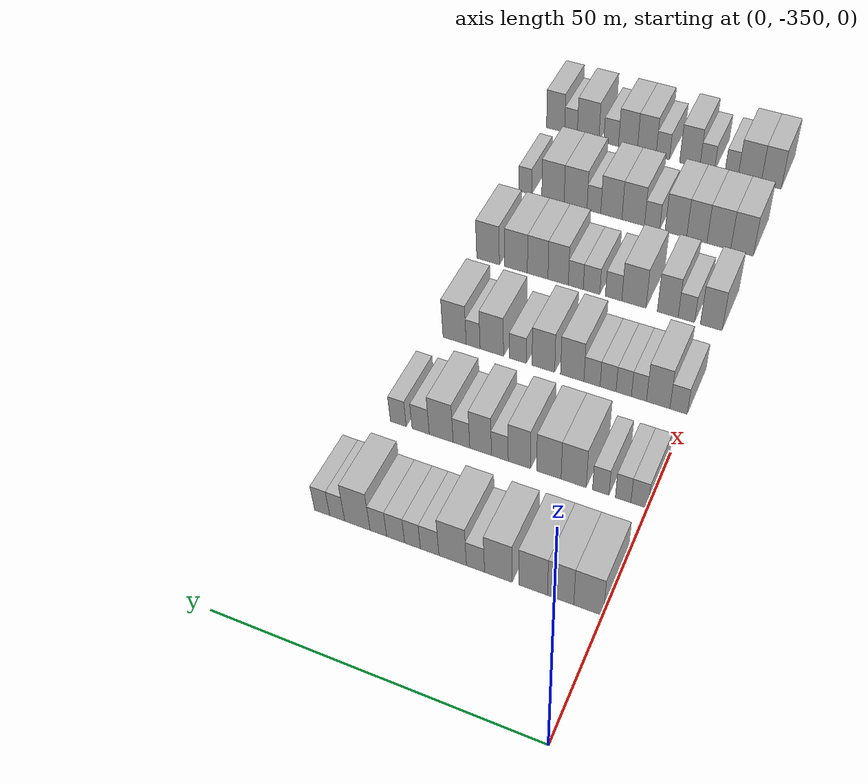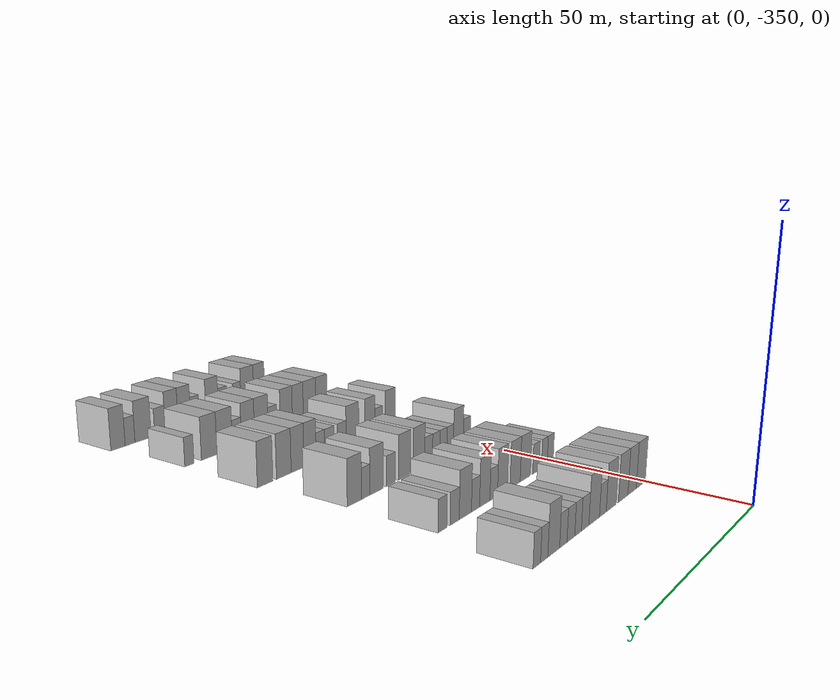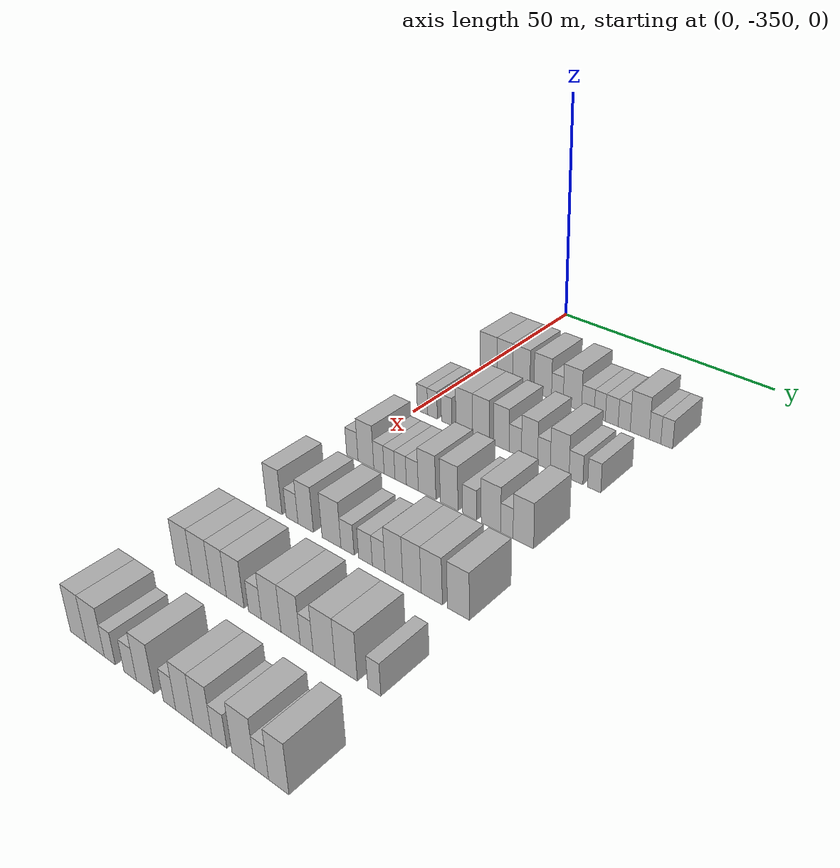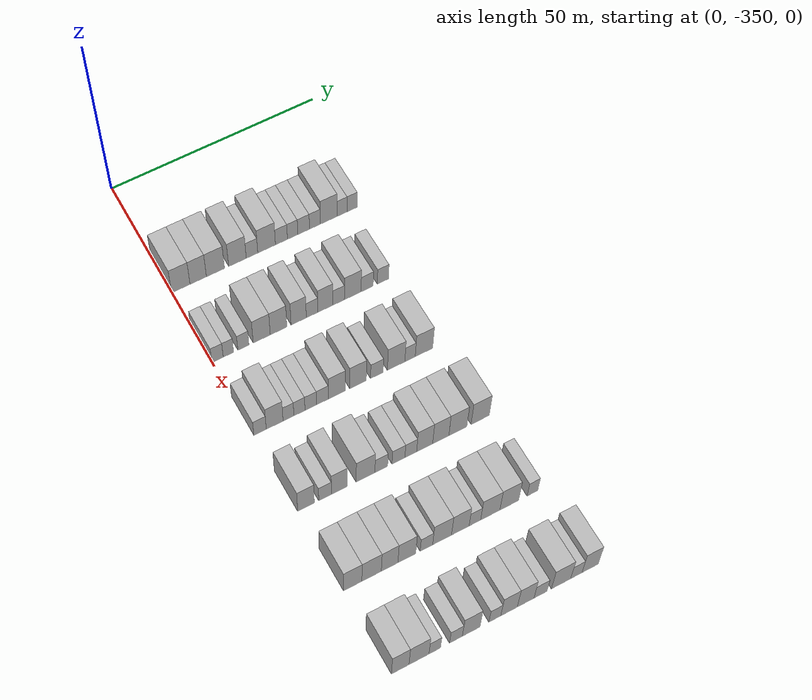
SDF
<sdf version="1.6">
 <world name="default">
  <model name="building_1">
   <static>1</static>
   <pose>25.0000 -347.8321 0 0.000000 0.000000 0.000000</pose>
   <link name="link">
    <pose>0 0 4.50 0 0 0</pose>
    <collision name="collision"><geometry><box><size>10.0000 4.3358 9.0000</size></box></geometry></collision>
    <visual name="visual">
     <cast_shadows>0</cast_shadows>
     <geometry><box><size>10.0000 4.3358 9.0000</size></box></geometry>
     <material>
      <script>
       <uri>model://HANNAS_wall/materials/scripts</uri>
       <uri>model://HANNAS_wall/materials/textures</uri>
       <name>vrc/HANNAS_wall</name>
      </script>
     </material>
    </visual>
   </link>
  </model>
  <model name="building_2">
   <static>1</static>
   <pose>25.0000 -343.7193 0 0.000000 0.000000 0.000000</pose>
   <link name="link">
    <pose>0 0 4.50 0 0 0</pose>
    <collision name="collision"><geometry><box><size>10.0000 3.8897 9.0000</size></box></geometry></collision>
    <visual name="visual">
     <cast_shadows>0</cast_shadows>
     <geometry><box><size>10.0000 3.8897 9.0000</size></box></geometry>
     <material>
      <script>
       <uri>model://HANNAS_wall/materials/scripts</uri>
       <uri>model://HANNAS_wall/materials/textures</uri>
       <name>vrc/HANNAS_wall</name>
      </script>
     </material>
    </visual>
   </link>
  </model>
  <model name="building_3">
   <static>1</static>
   <pose>25.0000 -339.6168 0 0.000000 0.000000 0.000000</pose>
   <link name="link">
    <pose>0 0 4.50 0 0 0</pose>
    <collision name="collision"><geometry><box><size>10.0000 4.3153 9.0000</size></box></geometry></collision>
    <visual name="visual">
     <cast_shadows>0</cast_shadows>
     <geometry><box><size>10.0000 4.3153 9.0000</size></box></geometry>
     <material>
      <script>
       <uri>model://HANNAS_wall/materials/scripts</uri>
       <uri>model://HANNAS_wall/materials/textures</uri>
       <name>vrc/HANNAS_wall</name>
      </script>
     </material>
    </visual>
   </link>
  </model>
  <model name="building_4">
   <static>1</static>
   <pose>25.0000 -334.3568 0 0.000000 0.000000 0.000000</pose>
   <link name="link">
    <pose>0 0 4.50 0 0 0</pose>
    <collision name="collision"><geometry><box><size>10.0000 4.2047 9.0000</size></box></geometry></collision>
    <visual name="visual">
     <cast_shadows>0</cast_shadows>
     <geometry><box><size>10.0000 4.2047 9.0000</size></box></geometry>
     <material>
      <script>
       <uri>model://HANNAS_wall/materials/scripts</uri>
       <uri>model://HANNAS_wall/materials/textures</uri>
       <name>vrc/HANNAS_wall</name>
      </script>
     </material>
    </visual>
   </link>
  </model>
  <model name="building_5">
   <static>1</static>
   <pose>25.0000 -330.8617 0 0.000000 0.000000 0.000000</pose>
   <link name="link">
    <pose>0 0 3.00 0 0 0</pose>
    <collision name="collision"><geometry><box><size>10.0000 2.7855 6.0000</size></box></geometry></collision>
    <visual name="visual">
     <cast_shadows>0</cast_shadows>
     <geometry><box><size>10.0000 2.7855 6.0000</size></box></geometry>
     <material>
      <script>
       <uri>model://HANNAS_wall/materials/scripts</uri>
       <uri>model://HANNAS_wall/materials/textures</uri>
       <name>vrc/HANNAS_wall</name>
      </script>
     </material>
    </visual>
   </link>
  </model>
  <model name="building_6">
   <static>1</static>
   <pose>25.0000 -327.3317 0 0.000000 0.000000 0.000000</pose>
   <link name="link">
    <pose>0 0 4.50 0 0 0</pose>
    <collision name="collision"><geometry><box><size>10.0000 4.2745 9.0000</size></box></geometry></collision>
    <visual name="visual">
     <cast_shadows>0</cast_shadows>
     <geometry><box><size>10.0000 4.2745 9.0000</size></box></geometry>
     <material>
      <script>
       <uri>model://HANNAS_wall/materials/scripts</uri>
       <uri>model://HANNAS_wall/materials/textures</uri>
       <name>vrc/HANNAS_wall</name>
      </script>
     </material>
    </visual>
   </link>
  </model>
  <model name="building_7">
   <static>1</static>
   <pose>25.0000 -323.7364 0 0.000000 0.000000 0.000000</pose>
   <link name="link">
    <pose>0 0 3.00 0 0 0</pose>
    <collision name="collision"><geometry><box><size>10.0000 2.9162 6.0000</size></box></geometry></collision>
    <visual name="visual">
     <cast_shadows>0</cast_shadows>
     <geometry><box><size>10.0000 2.9162 6.0000</size></box></geometry>
     <material>
      <script>
       <uri>model://HANNAS_wall/materials/scripts</uri>
       <uri>model://HANNAS_wall/materials/textures</uri>
       <name>vrc/HANNAS_wall</name>
      </script>
     </material>
    </visual>
   </link>
  </model>
  <model name="building_8">
   <static>1</static>
   <pose>25.0000 -321.0220 0 0.000000 0.000000 0.000000</pose>
   <link name="link">
    <pose>0 0 3.00 0 0 0</pose>
    <collision name="collision"><geometry><box><size>10.0000 2.5125 6.0000</size></box></geometry></collision>
    <visual name="visual">
     <cast_shadows>0</cast_shadows>
     <geometry><box><size>10.0000 2.5125 6.0000</size></box></geometry>
     <material>
      <script>
       <uri>model://HANNAS_wall/materials/scripts</uri>
       <uri>model://HANNAS_wall/materials/textures</uri>
       <name>vrc/HANNAS_wall</name>
      </script>
     </material>
    </visual>
   </link>
  </model>
  <model name="building_9">
   <static>1</static>
   <pose>25.0000 -318.3327 0 0.000000 0.000000 0.000000</pose>
   <link name="link">
    <pose>0 0 3.00 0 0 0</pose>
    <collision name="collision"><geometry><box><size>10.0000 2.8662 6.0000</size></box></geometry></collision>
    <visual name="visual">
     <cast_shadows>0</cast_shadows>
     <geometry><box><size>10.0000 2.8662 6.0000</size></box></geometry>
     <material>
      <script>
       <uri>model://HANNAS_wall/materials/scripts</uri>
       <uri>model://HANNAS_wall/materials/textures</uri>
       <name>vrc/HANNAS_wall</name>
      </script>
     </material>
    </visual>
   </link>
  </model>
  <model name="building_10">
   <static>1</static>
   <pose>25.0000 -315.5656 0 0.000000 0.000000 0.000000</pose>
   <link name="link">
    <pose>0 0 3.00 0 0 0</pose>
    <collision name="collision"><geometry><box><size>10.0000 2.6680 6.0000</size></box></geometry></collision>
    <visual name="visual">
     <cast_shadows>0</cast_shadows>
     <geometry><box><size>10.0000 2.6680 6.0000</size></box></geometry>
     <material>
      <script>
       <uri>model://HANNAS_wall/materials/scripts</uri>
       <uri>model://HANNAS_wall/materials/textures</uri>
       <name>vrc/HANNAS_wall</name>
      </script>
     </material>
    </visual>
   </link>
  </model>
  <model name="building_11">
   <static>1</static>
   <pose>25.0000 -312.1745 0 0.000000 0.000000 0.000000</pose>
   <link name="link">
    <pose>0 0 4.50 0 0 0</pose>
    <collision name="collision"><geometry><box><size>10.0000 4.1141 9.0000</size></box></geometry></collision>
    <visual name="visual">
     <cast_shadows>0</cast_shadows>
     <geometry><box><size>10.0000 4.1141 9.0000</size></box></geometry>
     <material>
      <script>
       <uri>model://HANNAS_wall/materials/scripts</uri>
       <uri>model://HANNAS_wall/materials/textures</uri>
       <name>vrc/HANNAS_wall</name>
      </script>
     </material>
    </visual>
   </link>
  </model>
  <model name="building_12">
   <static>1</static>
   <pose>25.0000 -308.8851 0 0.000000 0.000000 0.000000</pose>
   <link name="link">
    <pose>0 0 3.00 0 0 0</pose>
    <collision name="collision"><geometry><box><size>10.0000 2.4647 6.0000</size></box></geometry></collision>
    <visual name="visual">
     <cast_shadows>0</cast_shadows>
     <geometry><box><size>10.0000 2.4647 6.0000</size></box></geometry>
     <material>
      <script>
       <uri>model://HANNAS_wall/materials/scripts</uri>
       <uri>model://HANNAS_wall/materials/textures</uri>
       <name>vrc/HANNAS_wall</name>
      </script>
     </material>
    </visual>
   </link>
  </model>
  <model name="building_13">
   <static>1</static>
   <pose>25.0000 -306.4076 0 0.000000 0.000000 0.000000</pose>
   <link name="link">
    <pose>0 0 3.00 0 0 0</pose>
    <collision name="collision"><geometry><box><size>10.0000 2.4903 6.0000</size></box></geometry></collision>
    <visual name="visual">
     <cast_shadows>0</cast_shadows>
     <geometry><box><size>10.0000 2.4903 6.0000</size></box></geometry>
     <material>
      <script>
       <uri>model://HANNAS_wall/materials/scripts</uri>
       <uri>model://HANNAS_wall/materials/textures</uri>
       <name>vrc/HANNAS_wall</name>
      </script>
     </material>
    </visual>
   </link>
  </model>
  <model name="building_173">
   <static>1</static>
   <pose>44.0000 -348.6769 0 0.000000 0.000000 0.000000</pose>
   <link name="link">
    <pose>0 0 3.00 0 0 0</pose>
    <collision name="collision"><geometry><box><size>10.0000 2.6462 6.0000</size></box></geometry></collision>
    <visual name="visual">
     <cast_shadows>0</cast_shadows>
     <geometry><box><size>10.0000 2.6462 6.0000</size></box></geometry>
     <material>
      <script>
       <uri>model://HANNAS_wall/materials/scripts</uri>
       <uri>model://HANNAS_wall/materials/textures</uri>
       <name>vrc/HANNAS_wall</name>
      </script>
     </material>
    </visual>
   </link>
  </model>
  <model name="building_174">
   <static>1</static>
   <pose>44.0000 -346.1489 0 0.000000 0.000000 0.000000</pose>
   <link name="link">
    <pose>0 0 3.00 0 0 0</pose>
    <collision name="collision"><geometry><box><size>10.0000 2.4098 6.0000</size></box></geometry></collision>
    <visual name="visual">
     <cast_shadows>0</cast_shadows>
     <geometry><box><size>10.0000 2.4098 6.0000</size></box></geometry>
     <material>
      <script>
       <uri>model://HANNAS_wall/materials/scripts</uri>
       <uri>model://HANNAS_wall/materials/textures</uri>
       <name>vrc/HANNAS_wall</name>
      </script>
     </material>
    </visual>
   </link>
  </model>
  <model name="building_175">
   <static>1</static>
   <pose>44.0000 -342.6481 0 0.000000 0.000000 0.000000</pose>
   <link name="link">
    <pose>0 0 3.00 0 0 0</pose>
    <collision name="collision"><geometry><box><size>10.0000 2.5917 6.0000</size></box></geometry></collision>
    <visual name="visual">
     <cast_shadows>0</cast_shadows>
     <geometry><box><size>10.0000 2.5917 6.0000</size></box></geometry>
     <material>
      <script>
       <uri>model://HANNAS_wall/materials/scripts</uri>
       <uri>model://HANNAS_wall/materials/textures</uri>
       <name>vrc/HANNAS_wall</name>
      </script>
     </material>
    </visual>
   </link>
  </model>
  <model name="building_176">
   <static>1</static>
   <pose>44.0000 -338.3502 0 0.000000 0.000000 0.000000</pose>
   <link name="link">
    <pose>0 0 4.50 0 0 0</pose>
    <collision name="collision"><geometry><box><size>10.0000 4.0040 9.0000</size></box></geometry></collision>
    <visual name="visual">
     <cast_shadows>0</cast_shadows>
     <geometry><box><size>10.0000 4.0040 9.0000</size></box></geometry>
     <material>
      <script>
       <uri>model://HANNAS_wall/materials/scripts</uri>
       <uri>model://HANNAS_wall/materials/textures</uri>
       <name>vrc/HANNAS_wall</name>
      </script>
     </material>
    </visual>
   </link>
  </model>
  <model name="building_177">
   <static>1</static>
   <pose>44.0000 -334.3883 0 0.000000 0.000000 0.000000</pose>
   <link name="link">
    <pose>0 0 4.50 0 0 0</pose>
    <collision name="collision"><geometry><box><size>10.0000 3.9199 9.0000</size></box></geometry></collision>
    <visual name="visual">
     <cast_shadows>0</cast_shadows>
     <geometry><box><size>10.0000 3.9199 9.0000</size></box></geometry>
     <material>
      <script>
       <uri>model://HANNAS_wall/materials/scripts</uri>
       <uri>model://HANNAS_wall/materials/textures</uri>
       <name>vrc/HANNAS_wall</name>
      </script>
     </material>
    </visual>
   </link>
  </model>
  <model name="building_178">
   <static>1</static>
   <pose>44.0000 -329.6189 0 0.000000 0.000000 0.000000</pose>
   <link name="link">
    <pose>0 0 4.50 0 0 0</pose>
    <collision name="collision"><geometry><box><size>10.0000 3.6189 9.0000</size></box></geometry></collision>
    <visual name="visual">
     <cast_shadows>0</cast_shadows>
     <geometry><box><size>10.0000 3.6189 9.0000</size></box></geometry>
     <material>
      <script>
       <uri>model://HANNAS_wall/materials/scripts</uri>
       <uri>model://HANNAS_wall/materials/textures</uri>
       <name>vrc/HANNAS_wall</name>
      </script>
     </material>
    </visual>
   </link>
  </model>
  <model name="building_179">
   <static>1</static>
   <pose>44.0000 -326.4324 0 0.000000 0.000000 0.000000</pose>
   <link name="link">
    <pose>0 0 3.00 0 0 0</pose>
    <collision name="collision"><geometry><box><size>10.0000 2.7541 6.0000</size></box></geometry></collision>
    <visual name="visual">
     <cast_shadows>0</cast_shadows>
     <geometry><box><size>10.0000 2.7541 6.0000</size></box></geometry>
     <material>
      <script>
       <uri>model://HANNAS_wall/materials/scripts</uri>
       <uri>model://HANNAS_wall/materials/textures</uri>
       <name>vrc/HANNAS_wall</name>
      </script>
     </material>
    </visual>
   </link>
  </model>
  <model name="building_180">
   <static>1</static>
   <pose>44.0000 -323.2542 0 0.000000 0.000000 0.000000</pose>
   <link name="link">
    <pose>0 0 4.50 0 0 0</pose>
    <collision name="collision"><geometry><box><size>10.0000 3.6024 9.0000</size></box></geometry></collision>
    <visual name="visual">
     <cast_shadows>0</cast_shadows>
     <geometry><box><size>10.0000 3.6024 9.0000</size></box></geometry>
     <material>
      <script>
       <uri>model://HANNAS_wall/materials/scripts</uri>
       <uri>model://HANNAS_wall/materials/textures</uri>
       <name>vrc/HANNAS_wall</name>
      </script>
     </material>
    </visual>
   </link>
  </model>
  <model name="building_181">
   <static>1</static>
   <pose>44.0000 -320.0668 0 0.000000 0.000000 0.000000</pose>
   <link name="link">
    <pose>0 0 3.00 0 0 0</pose>
    <collision name="collision"><geometry><box><size>10.0000 2.7723 6.0000</size></box></geometry></collision>
    <visual name="visual">
     <cast_shadows>0</cast_shadows>
     <geometry><box><size>10.0000 2.7723 6.0000</size></box></geometry>
     <material>
      <script>
       <uri>model://HANNAS_wall/materials/scripts</uri>
       <uri>model://HANNAS_wall/materials/textures</uri>
       <name>vrc/HANNAS_wall</name>
      </script>
     </material>
    </visual>
   </link>
  </model>
  <model name="building_182">
   <static>1</static>
   <pose>44.0000 -316.6609 0 0.000000 0.000000 0.000000</pose>
   <link name="link">
    <pose>0 0 4.50 0 0 0</pose>
    <collision name="collision"><geometry><box><size>10.0000 4.0397 9.0000</size></box></geometry></collision>
    <visual name="visual">
     <cast_shadows>0</cast_shadows>
     <geometry><box><size>10.0000 4.0397 9.0000</size></box></geometry>
     <material>
      <script>
       <uri>model://HANNAS_wall/materials/scripts</uri>
       <uri>model://HANNAS_wall/materials/textures</uri>
       <name>vrc/HANNAS_wall</name>
      </script>
     </material>
    </visual>
   </link>
  </model>
  <model name="building_183">
   <static>1</static>
   <pose>44.0000 -313.1752 0 0.000000 0.000000 0.000000</pose>
   <link name="link">
    <pose>0 0 3.00 0 0 0</pose>
    <collision name="collision"><geometry><box><size>10.0000 2.9316 6.0000</size></box></geometry></collision>
    <visual name="visual">
     <cast_shadows>0</cast_shadows>
     <geometry><box><size>10.0000 2.9316 6.0000</size></box></geometry>
     <material>
      <script>
       <uri>model://HANNAS_wall/materials/scripts</uri>
       <uri>model://HANNAS_wall/materials/textures</uri>
       <name>vrc/HANNAS_wall</name>
      </script>
     </material>
    </visual>
   </link>
  </model>
  <model name="building_184">
   <static>1</static>
   <pose>44.0000 -309.3481 0 0.000000 0.000000 0.000000</pose>
   <link name="link">
    <pose>0 0 3.00 0 0 0</pose>
    <collision name="collision"><geometry><box><size>10.0000 2.7226 6.0000</size></box></geometry></collision>
    <visual name="visual">
     <cast_shadows>0</cast_shadows>
     <geometry><box><size>10.0000 2.7226 6.0000</size></box></geometry>
     <material>
      <script>
       <uri>model://HANNAS_wall/materials/scripts</uri>
       <uri>model://HANNAS_wall/materials/textures</uri>
       <name>vrc/HANNAS_wall</name>
      </script>
     </material>
    </visual>
   </link>
  </model>
  <model name="building_347">
   <static>1</static>
   <pose>63.0000 -348.5796 0 0.000000 0.000000 0.000000</pose>
   <link name="link">
    <pose>0 0 3.00 0 0 0</pose>
    <collision name="collision"><geometry><box><size>10.0000 2.8408 6.0000</size></box></geometry></collision>
    <visual name="visual">
     <cast_shadows>0</cast_shadows>
     <geometry><box><size>10.0000 2.8408 6.0000</size></box></geometry>
     <material>
      <script>
       <uri>model://HANNAS_wall/materials/scripts</uri>
       <uri>model://HANNAS_wall/materials/textures</uri>
       <name>vrc/HANNAS_wall</name>
      </script>
     </material>
    </visual>
   </link>
  </model>
  <model name="building_348">
   <static>1</static>
   <pose>63.0000 -345.2292 0 0.000000 0.000000 0.000000</pose>
   <link name="link">
    <pose>0 0 4.50 0 0 0</pose>
    <collision name="collision"><geometry><box><size>10.0000 3.8601 9.0000</size></box></geometry></collision>
    <visual name="visual">
     <cast_shadows>0</cast_shadows>
     <geometry><box><size>10.0000 3.8601 9.0000</size></box></geometry>
     <material>
      <script>
       <uri>model://HANNAS_wall/materials/scripts</uri>
       <uri>model://HANNAS_wall/materials/textures</uri>
       <name>vrc/HANNAS_wall</name>
      </script>
     </material>
    </visual>
   </link>
  </model>
  <model name="building_349">
   <static>1</static>
   <pose>63.0000 -342.0513 0 0.000000 0.000000 0.000000</pose>
   <link name="link">
    <pose>0 0 3.00 0 0 0</pose>
    <collision name="collision"><geometry><box><size>10.0000 2.4957 6.0000</size></box></geometry></collision>
    <visual name="visual">
     <cast_shadows>0</cast_shadows>
     <geometry><box><size>10.0000 2.4957 6.0000</size></box></geometry>
     <material>
      <script>
       <uri>model://HANNAS_wall/materials/scripts</uri>
       <uri>model://HANNAS_wall/materials/textures</uri>
       <name>vrc/HANNAS_wall</name>
      </script>
     </material>
    </visual>
   </link>
  </model>
  <model name="building_350">
   <static>1</static>
   <pose>63.0000 -339.5182 0 0.000000 0.000000 0.000000</pose>
   <link name="link">
    <pose>0 0 3.00 0 0 0</pose>
    <collision name="collision"><geometry><box><size>10.0000 2.5704 6.0000</size></box></geometry></collision>
    <visual name="visual">
     <cast_shadows>0</cast_shadows>
     <geometry><box><size>10.0000 2.5704 6.0000</size></box></geometry>
     <material>
      <script>
       <uri>model://HANNAS_wall/materials/scripts</uri>
       <uri>model://HANNAS_wall/materials/textures</uri>
       <name>vrc/HANNAS_wall</name>
      </script>
     </material>
    </visual>
   </link>
  </model>
  <model name="building_351">
   <static>1</static>
   <pose>63.0000 -336.8920 0 0.000000 0.000000 0.000000</pose>
   <link name="link">
    <pose>0 0 3.00 0 0 0</pose>
    <collision name="collision"><geometry><box><size>10.0000 2.6820 6.0000</size></box></geometry></collision>
    <visual name="visual">
     <cast_shadows>0</cast_shadows>
     <geometry><box><size>10.0000 2.6820 6.0000</size></box></geometry>
     <material>
      <script>
       <uri>model://HANNAS_wall/materials/scripts</uri>
       <uri>model://HANNAS_wall/materials/textures</uri>
       <name>vrc/HANNAS_wall</name>
      </script>
     </material>
    </visual>
   </link>
  </model>
  <model name="building_352">
   <static>1</static>
   <pose>63.0000 -334.1757 0 0.000000 0.000000 0.000000</pose>
   <link name="link">
    <pose>0 0 3.00 0 0 0</pose>
    <collision name="collision"><geometry><box><size>10.0000 2.7506 6.0000</size></box></geometry></collision>
    <visual name="visual">
     <cast_shadows>0</cast_shadows>
     <geometry><box><size>10.0000 2.7506 6.0000</size></box></geometry>
     <material>
      <script>
       <uri>model://HANNAS_wall/materials/scripts</uri>
       <uri>model://HANNAS_wall/materials/textures</uri>
       <name>vrc/HANNAS_wall</name>
      </script>
     </material>
    </visual>
   </link>
  </model>
  <model name="building_353">
   <static>1</static>
   <pose>63.0000 -330.8063 0 0.000000 0.000000 0.000000</pose>
   <link name="link">
    <pose>0 0 4.50 0 0 0</pose>
    <collision name="collision"><geometry><box><size>10.0000 3.9883 9.0000</size></box></geometry></collision>
    <visual name="visual">
     <cast_shadows>0</cast_shadows>
     <geometry><box><size>10.0000 3.9883 9.0000</size></box></geometry>
     <material>
      <script>
       <uri>model://HANNAS_wall/materials/scripts</uri>
       <uri>model://HANNAS_wall/materials/textures</uri>
       <name>vrc/HANNAS_wall</name>
      </script>
     </material>
    </visual>
   </link>
  </model>
  <model name="building_354">
   <static>1</static>
   <pose>63.0000 -325.8582 0 0.000000 0.000000 0.000000</pose>
   <link name="link">
    <pose>0 0 4.50 0 0 0</pose>
    <collision name="collision"><geometry><box><size>10.0000 3.9078 9.0000</size></box></geometry></collision>
    <visual name="visual">
     <cast_shadows>0</cast_shadows>
     <geometry><box><size>10.0000 3.9078 9.0000</size></box></geometry>
     <material>
      <script>
       <uri>model://HANNAS_wall/materials/scripts</uri>
       <uri>model://HANNAS_wall/materials/textures</uri>
       <name>vrc/HANNAS_wall</name>
      </script>
     </material>
    </visual>
   </link>
  </model>
  <model name="building_355">
   <static>1</static>
   <pose>63.0000 -321.4117 0 0.000000 0.000000 0.000000</pose>
   <link name="link">
    <pose>0 0 3.00 0 0 0</pose>
    <collision name="collision"><geometry><box><size>10.0000 2.9852 6.0000</size></box></geometry></collision>
    <visual name="visual">
     <cast_shadows>0</cast_shadows>
     <geometry><box><size>10.0000 2.9852 6.0000</size></box></geometry>
     <material>
      <script>
       <uri>model://HANNAS_wall/materials/scripts</uri>
       <uri>model://HANNAS_wall/materials/textures</uri>
       <name>vrc/HANNAS_wall</name>
      </script>
     </material>
    </visual>
   </link>
  </model>
  <model name="building_356">
   <static>1</static>
   <pose>63.0000 -316.8380 0 0.000000 0.000000 0.000000</pose>
   <link name="link">
    <pose>0 0 4.50 0 0 0</pose>
    <collision name="collision"><geometry><box><size>10.0000 4.1621 9.0000</size></box></geometry></collision>
    <visual name="visual">
     <cast_shadows>0</cast_shadows>
     <geometry><box><size>10.0000 4.1621 9.0000</size></box></geometry>
     <material>
      <script>
       <uri>model://HANNAS_wall/materials/scripts</uri>
       <uri>model://HANNAS_wall/materials/textures</uri>
       <name>vrc/HANNAS_wall</name>
      </script>
     </material>
    </visual>
   </link>
  </model>
  <model name="building_357">
   <static>1</static>
   <pose>63.0000 -313.5157 0 0.000000 0.000000 0.000000</pose>
   <link name="link">
    <pose>0 0 3.00 0 0 0</pose>
    <collision name="collision"><geometry><box><size>10.0000 2.4826 6.0000</size></box></geometry></collision>
    <visual name="visual">
     <cast_shadows>0</cast_shadows>
     <geometry><box><size>10.0000 2.4826 6.0000</size></box></geometry>
     <material>
      <script>
       <uri>model://HANNAS_wall/materials/scripts</uri>
       <uri>model://HANNAS_wall/materials/textures</uri>
       <name>vrc/HANNAS_wall</name>
      </script>
     </material>
    </visual>
   </link>
  </model>
  <model name="building_358">
   <static>1</static>
   <pose>63.0000 -310.1931 0 0.000000 0.000000 0.000000</pose>
   <link name="link">
    <pose>0 0 4.50 0 0 0</pose>
    <collision name="collision"><geometry><box><size>10.0000 4.1625 9.0000</size></box></geometry></collision>
    <visual name="visual">
     <cast_shadows>0</cast_shadows>
     <geometry><box><size>10.0000 4.1625 9.0000</size></box></geometry>
     <material>
      <script>
       <uri>model://HANNAS_wall/materials/scripts</uri>
       <uri>model://HANNAS_wall/materials/textures</uri>
       <name>vrc/HANNAS_wall</name>
      </script>
     </material>
    </visual>
   </link>
  </model>
  <model name="building_531">
   <static>1</static>
   <pose>82.0000 -348.1233 0 0.000000 0.000000 0.000000</pose>
   <link name="link">
    <pose>0 0 4.50 0 0 0</pose>
    <collision name="collision"><geometry><box><size>10.0000 3.7535 9.0000</size></box></geometry></collision>
    <visual name="visual">
     <cast_shadows>0</cast_shadows>
     <geometry><box><size>10.0000 3.7535 9.0000</size></box></geometry>
     <material>
      <script>
       <uri>model://HANNAS_wall/materials/scripts</uri>
       <uri>model://HANNAS_wall/materials/textures</uri>
       <name>vrc/HANNAS_wall</name>
      </script>
     </material>
    </visual>
   </link>
  </model>
  <model name="building_532">
   <static>1</static>
   <pose>82.0000 -343.8173 0 0.000000 0.000000 0.000000</pose>
   <link name="link">
    <pose>0 0 3.00 0 0 0</pose>
    <collision name="collision"><geometry><box><size>10.0000 2.8585 6.0000</size></box></geometry></collision>
    <visual name="visual">
     <cast_shadows>0</cast_shadows>
     <geometry><box><size>10.0000 2.8585 6.0000</size></box></geometry>
     <material>
      <script>
       <uri>model://HANNAS_wall/materials/scripts</uri>
       <uri>model://HANNAS_wall/materials/textures</uri>
       <name>vrc/HANNAS_wall</name>
      </script>
     </material>
    </visual>
   </link>
  </model>
  <model name="building_533">
   <static>1</static>
   <pose>82.0000 -340.5735 0 0.000000 0.000000 0.000000</pose>
   <link name="link">
    <pose>0 0 4.50 0 0 0</pose>
    <collision name="collision"><geometry><box><size>10.0000 3.6292 9.0000</size></box></geometry></collision>
    <visual name="visual">
     <cast_shadows>0</cast_shadows>
     <geometry><box><size>10.0000 3.6292 9.0000</size></box></geometry>
     <material>
      <script>
       <uri>model://HANNAS_wall/materials/scripts</uri>
       <uri>model://HANNAS_wall/materials/textures</uri>
       <name>vrc/HANNAS_wall</name>
      </script>
     </material>
    </visual>
   </link>
  </model>
  <model name="building_534">
   <static>1</static>
   <pose>82.0000 -334.6034 0 0.000000 0.000000 0.000000</pose>
   <link name="link">
    <pose>0 0 4.50 0 0 0</pose>
    <collision name="collision"><geometry><box><size>10.0000 4.3110 9.0000</size></box></geometry></collision>
    <visual name="visual">
     <cast_shadows>0</cast_shadows>
     <geometry><box><size>10.0000 4.3110 9.0000</size></box></geometry>
     <material>
      <script>
       <uri>model://HANNAS_wall/materials/scripts</uri>
       <uri>model://HANNAS_wall/materials/textures</uri>
       <name>vrc/HANNAS_wall</name>
      </script>
     </material>
    </visual>
   </link>
  </model>
  <model name="building_535">
   <static>1</static>
   <pose>82.0000 -330.9789 0 0.000000 0.000000 0.000000</pose>
   <link name="link">
    <pose>0 0 3.00 0 0 0</pose>
    <collision name="collision"><geometry><box><size>10.0000 2.9380 6.0000</size></box></geometry></collision>
    <visual name="visual">
     <cast_shadows>0</cast_shadows>
     <geometry><box><size>10.0000 2.9380 6.0000</size></box></geometry>
     <material>
      <script>
       <uri>model://HANNAS_wall/materials/scripts</uri>
       <uri>model://HANNAS_wall/materials/textures</uri>
       <name>vrc/HANNAS_wall</name>
      </script>
     </material>
    </visual>
   </link>
  </model>
  <model name="building_536">
   <static>1</static>
   <pose>82.0000 -327.0113 0 0.000000 0.000000 0.000000</pose>
   <link name="link">
    <pose>0 0 3.00 0 0 0</pose>
    <collision name="collision"><geometry><box><size>10.0000 2.9974 6.0000</size></box></geometry></collision>
    <visual name="visual">
     <cast_shadows>0</cast_shadows>
     <geometry><box><size>10.0000 2.9974 6.0000</size></box></geometry>
     <material>
      <script>
       <uri>model://HANNAS_wall/materials/scripts</uri>
       <uri>model://HANNAS_wall/materials/textures</uri>
       <name>vrc/HANNAS_wall</name>
      </script>
     </material>
    </visual>
   </link>
  </model>
  <model name="building_537">
   <static>1</static>
   <pose>82.0000 -324.1466 0 0.000000 0.000000 0.000000</pose>
   <link name="link">
    <pose>0 0 3.00 0 0 0</pose>
    <collision name="collision"><geometry><box><size>10.0000 2.7320 6.0000</size></box></geometry></collision>
    <visual name="visual">
     <cast_shadows>0</cast_shadows>
     <geometry><box><size>10.0000 2.7320 6.0000</size></box></geometry>
     <material>
      <script>
       <uri>model://HANNAS_wall/materials/scripts</uri>
       <uri>model://HANNAS_wall/materials/textures</uri>
       <name>vrc/HANNAS_wall</name>
      </script>
     </material>
    </visual>
   </link>
  </model>
  <model name="building_538">
   <static>1</static>
   <pose>82.0000 -320.9137 0 0.000000 0.000000 0.000000</pose>
   <link name="link">
    <pose>0 0 4.50 0 0 0</pose>
    <collision name="collision"><geometry><box><size>10.0000 3.7337 9.0000</size></box></geometry></collision>
    <visual name="visual">
     <cast_shadows>0</cast_shadows>
     <geometry><box><size>10.0000 3.7337 9.0000</size></box></geometry>
     <material>
      <script>
       <uri>model://HANNAS_wall/materials/scripts</uri>
       <uri>model://HANNAS_wall/materials/textures</uri>
       <name>vrc/HANNAS_wall</name>
      </script>
     </material>
    </visual>
   </link>
  </model>
  <model name="building_539">
   <static>1</static>
   <pose>82.0000 -317.1479 0 0.000000 0.000000 0.000000</pose>
   <link name="link">
    <pose>0 0 4.50 0 0 0</pose>
    <collision name="collision"><geometry><box><size>10.0000 3.7979 9.0000</size></box></geometry></collision>
    <visual name="visual">
     <cast_shadows>0</cast_shadows>
     <geometry><box><size>10.0000 3.7979 9.0000</size></box></geometry>
     <material>
      <script>
       <uri>model://HANNAS_wall/materials/scripts</uri>
       <uri>model://HANNAS_wall/materials/textures</uri>
       <name>vrc/HANNAS_wall</name>
      </script>
     </material>
    </visual>
   </link>
  </model>
  <model name="building_540">
   <static>1</static>
   <pose>82.0000 -313.1293 0 0.000000 0.000000 0.000000</pose>
   <link name="link">
    <pose>0 0 4.50 0 0 0</pose>
    <collision name="collision"><geometry><box><size>10.0000 4.2392 9.0000</size></box></geometry></collision>
    <visual name="visual">
     <cast_shadows>0</cast_shadows>
     <geometry><box><size>10.0000 4.2392 9.0000</size></box></geometry>
     <material>
      <script>
       <uri>model://HANNAS_wall/materials/scripts</uri>
       <uri>model://HANNAS_wall/materials/textures</uri>
       <name>vrc/HANNAS_wall</name>
      </script>
     </material>
    </visual>
   </link>
  </model>
  <model name="building_541">
   <static>1</static>
   <pose>82.0000 -307.8654 0 0.000000 0.000000 0.000000</pose>
   <link name="link">
    <pose>0 0 4.50 0 0 0</pose>
    <collision name="collision"><geometry><box><size>10.0000 4.2887 9.0000</size></box></geometry></collision>
    <visual name="visual">
     <cast_shadows>0</cast_shadows>
     <geometry><box><size>10.0000 4.2887 9.0000</size></box></geometry>
     <material>
      <script>
       <uri>model://HANNAS_wall/materials/scripts</uri>
       <uri>model://HANNAS_wall/materials/textures</uri>
       <name>vrc/HANNAS_wall</name>
      </script>
     </material>
    </visual>
   </link>
  </model>
  <model name="building_715">
   <static>1</static>
   <pose>101.0000 -347.9634 0 0.000000 0.000000 0.000000</pose>
   <link name="link">
    <pose>0 0 4.50 0 0 0</pose>
    <collision name="collision"><geometry><box><size>10.0000 4.0732 9.0000</size></box></geometry></collision>
    <visual name="visual">
     <cast_shadows>0</cast_shadows>
     <geometry><box><size>10.0000 4.0732 9.0000</size></box></geometry>
     <material>
      <script>
       <uri>model://HANNAS_wall/materials/scripts</uri>
       <uri>model://HANNAS_wall/materials/textures</uri>
       <name>vrc/HANNAS_wall</name>
      </script>
     </material>
    </visual>
   </link>
  </model>
  <model name="building_716">
   <static>1</static>
   <pose>101.0000 -343.7549 0 0.000000 0.000000 0.000000</pose>
   <link name="link">
    <pose>0 0 4.50 0 0 0</pose>
    <collision name="collision"><geometry><box><size>10.0000 4.3438 9.0000</size></box></geometry></collision>
    <visual name="visual">
     <cast_shadows>0</cast_shadows>
     <geometry><box><size>10.0000 4.3438 9.0000</size></box></geometry>
     <material>
      <script>
       <uri>model://HANNAS_wall/materials/scripts</uri>
       <uri>model://HANNAS_wall/materials/textures</uri>
       <name>vrc/HANNAS_wall</name>
      </script>
     </material>
    </visual>
   </link>
  </model>
  <model name="building_717">
   <static>1</static>
   <pose>101.0000 -339.7199 0 0.000000 0.000000 0.000000</pose>
   <link name="link">
    <pose>0 0 4.50 0 0 0</pose>
    <collision name="collision"><geometry><box><size>10.0000 3.7261 9.0000</size></box></geometry></collision>
    <visual name="visual">
     <cast_shadows>0</cast_shadows>
     <geometry><box><size>10.0000 3.7261 9.0000</size></box></geometry>
     <material>
      <script>
       <uri>model://HANNAS_wall/materials/scripts</uri>
       <uri>model://HANNAS_wall/materials/textures</uri>
       <name>vrc/HANNAS_wall</name>
      </script>
     </material>
    </visual>
   </link>
  </model>
  <model name="building_718">
   <static>1</static>
   <pose>101.0000 -335.8524 0 0.000000 0.000000 0.000000</pose>
   <link name="link">
    <pose>0 0 4.50 0 0 0</pose>
    <collision name="collision"><geometry><box><size>10.0000 4.0089 9.0000</size></box></geometry></collision>
    <visual name="visual">
     <cast_shadows>0</cast_shadows>
     <geometry><box><size>10.0000 4.0089 9.0000</size></box></geometry>
     <material>
      <script>
       <uri>model://HANNAS_wall/materials/scripts</uri>
       <uri>model://HANNAS_wall/materials/textures</uri>
       <name>vrc/HANNAS_wall</name>
      </script>
     </material>
    </visual>
   </link>
  </model>
  <model name="building_719">
   <static>1</static>
   <pose>101.0000 -331.4283 0 0.000000 0.000000 0.000000</pose>
   <link name="link">
    <pose>0 0 3.00 0 0 0</pose>
    <collision name="collision"><geometry><box><size>10.0000 2.8393 6.0000</size></box></geometry></collision>
    <visual name="visual">
     <cast_shadows>0</cast_shadows>
     <geometry><box><size>10.0000 2.8393 6.0000</size></box></geometry>
     <material>
      <script>
       <uri>model://HANNAS_wall/materials/scripts</uri>
       <uri>model://HANNAS_wall/materials/textures</uri>
       <name>vrc/HANNAS_wall</name>
      </script>
     </material>
    </visual>
   </link>
  </model>
  <model name="building_720">
   <static>1</static>
   <pose>101.0000 -327.8675 0 0.000000 0.000000 0.000000</pose>
   <link name="link">
    <pose>0 0 4.50 0 0 0</pose>
    <collision name="collision"><geometry><box><size>10.0000 4.2824 9.0000</size></box></geometry></collision>
    <visual name="visual">
     <cast_shadows>0</cast_shadows>
     <geometry><box><size>10.0000 4.2824 9.0000</size></box></geometry>
     <material>
      <script>
       <uri>model://HANNAS_wall/materials/scripts</uri>
       <uri>model://HANNAS_wall/materials/textures</uri>
       <name>vrc/HANNAS_wall</name>
      </script>
     </material>
    </visual>
   </link>
  </model>
  <model name="building_721">
   <static>1</static>
   <pose>101.0000 -323.7096 0 0.000000 0.000000 0.000000</pose>
   <link name="link">
    <pose>0 0 4.50 0 0 0</pose>
    <collision name="collision"><geometry><box><size>10.0000 4.0334 9.0000</size></box></geometry></collision>
    <visual name="visual">
     <cast_shadows>0</cast_shadows>
     <geometry><box><size>10.0000 4.0334 9.0000</size></box></geometry>
     <material>
      <script>
       <uri>model://HANNAS_wall/materials/scripts</uri>
       <uri>model://HANNAS_wall/materials/textures</uri>
       <name>vrc/HANNAS_wall</name>
      </script>
     </material>
    </visual>
   </link>
  </model>
  <model name="building_722">
   <static>1</static>
   <pose>101.0000 -320.3663 0 0.000000 0.000000 0.000000</pose>
   <link name="link">
    <pose>0 0 3.00 0 0 0</pose>
    <collision name="collision"><geometry><box><size>10.0000 2.6533 6.0000</size></box></geometry></collision>
    <visual name="visual">
     <cast_shadows>0</cast_shadows>
     <geometry><box><size>10.0000 2.6533 6.0000</size></box></geometry>
     <material>
      <script>
       <uri>model://HANNAS_wall/materials/scripts</uri>
       <uri>model://HANNAS_wall/materials/textures</uri>
       <name>vrc/HANNAS_wall</name>
      </script>
     </material>
    </visual>
   </link>
  </model>
  <model name="building_723">
   <static>1</static>
   <pose>101.0000 -316.8173 0 0.000000 0.000000 0.000000</pose>
   <link name="link">
    <pose>0 0 4.50 0 0 0</pose>
    <collision name="collision"><geometry><box><size>10.0000 4.4447 9.0000</size></box></geometry></collision>
    <visual name="visual">
     <cast_shadows>0</cast_shadows>
     <geometry><box><size>10.0000 4.4447 9.0000</size></box></geometry>
     <material>
      <script>
       <uri>model://HANNAS_wall/materials/scripts</uri>
       <uri>model://HANNAS_wall/materials/textures</uri>
       <name>vrc/HANNAS_wall</name>
      </script>
     </material>
    </visual>
   </link>
  </model>
  <model name="building_724">
   <static>1</static>
   <pose>101.0000 -312.4193 0 0.000000 0.000000 0.000000</pose>
   <link name="link">
    <pose>0 0 4.50 0 0 0</pose>
    <collision name="collision"><geometry><box><size>10.0000 4.3513 9.0000</size></box></geometry></collision>
    <visual name="visual">
     <cast_shadows>0</cast_shadows>
     <geometry><box><size>10.0000 4.3513 9.0000</size></box></geometry>
     <material>
      <script>
       <uri>model://HANNAS_wall/materials/scripts</uri>
       <uri>model://HANNAS_wall/materials/textures</uri>
       <name>vrc/HANNAS_wall</name>
      </script>
     </material>
    </visual>
   </link>
  </model>
  <model name="building_725">
   <static>1</static>
   <pose>101.0000 -307.0068 0 0.000000 0.000000 0.000000</pose>
   <link name="link">
    <pose>0 0 3.00 0 0 0</pose>
    <collision name="collision"><geometry><box><size>10.0000 2.4738 6.0000</size></box></geometry></collision>
    <visual name="visual">
     <cast_shadows>0</cast_shadows>
     <geometry><box><size>10.0000 2.4738 6.0000</size></box></geometry>
     <material>
      <script>
       <uri>model://HANNAS_wall/materials/scripts</uri>
       <uri>model://HANNAS_wall/materials/textures</uri>
       <name>vrc/HANNAS_wall</name>
      </script>
     </material>
    </visual>
   </link>
  </model>
  <model name="building_899">
   <static>1</static>
   <pose>120.0000 -348.0795 0 0.000000 0.000000 0.000000</pose>
   <link name="link">
    <pose>0 0 4.50 0 0 0</pose>
    <collision name="collision"><geometry><box><size>10.0000 3.8410 9.0000</size></box></geometry></collision>
    <visual name="visual">
     <cast_shadows>0</cast_shadows>
     <geometry><box><size>10.0000 3.8410 9.0000</size></box></geometry>
     <material>
      <script>
       <uri>model://HANNAS_wall/materials/scripts</uri>
       <uri>model://HANNAS_wall/materials/textures</uri>
       <name>vrc/HANNAS_wall</name>
      </script>
     </material>
    </visual>
   </link>
  </model>
  <model name="building_900">
   <static>1</static>
   <pose>120.0000 -343.9686 0 0.000000 0.000000 0.000000</pose>
   <link name="link">
    <pose>0 0 4.50 0 0 0</pose>
    <collision name="collision"><geometry><box><size>10.0000 4.3807 9.0000</size></box></geometry></collision>
    <visual name="visual">
     <cast_shadows>0</cast_shadows>
     <geometry><box><size>10.0000 4.3807 9.0000</size></box></geometry>
     <material>
      <script>
       <uri>model://HANNAS_wall/materials/scripts</uri>
       <uri>model://HANNAS_wall/materials/textures</uri>
       <name>vrc/HANNAS_wall</name>
      </script>
     </material>
    </visual>
   </link>
  </model>
  <model name="building_901">
   <static>1</static>
   <pose>120.0000 -340.5061 0 0.000000 0.000000 0.000000</pose>
   <link name="link">
    <pose>0 0 3.00 0 0 0</pose>
    <collision name="collision"><geometry><box><size>10.0000 2.5442 6.0000</size></box></geometry></collision>
    <visual name="visual">
     <cast_shadows>0</cast_shadows>
     <geometry><box><size>10.0000 2.5442 6.0000</size></box></geometry>
     <material>
      <script>
       <uri>model://HANNAS_wall/materials/scripts</uri>
       <uri>model://HANNAS_wall/materials/textures</uri>
       <name>vrc/HANNAS_wall</name>
      </script>
     </material>
    </visual>
   </link>
  </model>
  <model name="building_902">
   <static>1</static>
   <pose>120.0000 -335.8161 0 0.000000 0.000000 0.000000</pose>
   <link name="link">
    <pose>0 0 3.00 0 0 0</pose>
    <collision name="collision"><geometry><box><size>10.0000 2.8358 6.0000</size></box></geometry></collision>
    <visual name="visual">
     <cast_shadows>0</cast_shadows>
     <geometry><box><size>10.0000 2.8358 6.0000</size></box></geometry>
     <material>
      <script>
       <uri>model://HANNAS_wall/materials/scripts</uri>
       <uri>model://HANNAS_wall/materials/textures</uri>
       <name>vrc/HANNAS_wall</name>
      </script>
     </material>
    </visual>
   </link>
  </model>
  <model name="building_903">
   <static>1</static>
   <pose>120.0000 -332.4295 0 0.000000 0.000000 0.000000</pose>
   <link name="link">
    <pose>0 0 4.50 0 0 0</pose>
    <collision name="collision"><geometry><box><size>10.0000 3.9375 9.0000</size></box></geometry></collision>
    <visual name="visual">
     <cast_shadows>0</cast_shadows>
     <geometry><box><size>10.0000 3.9375 9.0000</size></box></geometry>
     <material>
      <script>
       <uri>model://HANNAS_wall/materials/scripts</uri>
       <uri>model://HANNAS_wall/materials/textures</uri>
       <name>vrc/HANNAS_wall</name>
      </script>
     </material>
    </visual>
   </link>
  </model>
  <model name="building_904">
   <static>1</static>
   <pose>120.0000 -327.1294 0 0.000000 0.000000 0.000000</pose>
   <link name="link">
    <pose>0 0 3.00 0 0 0</pose>
    <collision name="collision"><geometry><box><size>10.0000 2.6626 6.0000</size></box></geometry></collision>
    <visual name="visual">
     <cast_shadows>0</cast_shadows>
     <geometry><box><size>10.0000 2.6626 6.0000</size></box></geometry>
     <material>
      <script>
       <uri>model://HANNAS_wall/materials/scripts</uri>
       <uri>model://HANNAS_wall/materials/textures</uri>
       <name>vrc/HANNAS_wall</name>
      </script>
     </material>
    </visual>
   </link>
  </model>
  <model name="building_905">
   <static>1</static>
   <pose>120.0000 -323.9304 0 0.000000 0.000000 0.000000</pose>
   <link name="link">
    <pose>0 0 4.50 0 0 0</pose>
    <collision name="collision"><geometry><box><size>10.0000 3.7354 9.0000</size></box></geometry></collision>
    <visual name="visual">
     <cast_shadows>0</cast_shadows>
     <geometry><box><size>10.0000 3.7354 9.0000</size></box></geometry>
     <material>
      <script>
       <uri>model://HANNAS_wall/materials/scripts</uri>
       <uri>model://HANNAS_wall/materials/textures</uri>
       <name>vrc/HANNAS_wall</name>
      </script>
     </material>
    </visual>
   </link>
  </model>
  <model name="building_906">
   <static>1</static>
   <pose>120.0000 -320.1744 0 0.000000 0.000000 0.000000</pose>
   <link name="link">
    <pose>0 0 4.50 0 0 0</pose>
    <collision name="collision"><geometry><box><size>10.0000 3.7766 9.0000</size></box></geometry></collision>
    <visual name="visual">
     <cast_shadows>0</cast_shadows>
     <geometry><box><size>10.0000 3.7766 9.0000</size></box></geometry>
     <material>
      <script>
       <uri>model://HANNAS_wall/materials/scripts</uri>
       <uri>model://HANNAS_wall/materials/textures</uri>
       <name>vrc/HANNAS_wall</name>
      </script>
     </material>
    </visual>
   </link>
  </model>
  <model name="building_907">
   <static>1</static>
   <pose>120.0000 -316.8027 0 0.000000 0.000000 0.000000</pose>
   <link name="link">
    <pose>0 0 3.00 0 0 0</pose>
    <collision name="collision"><geometry><box><size>10.0000 2.9669 6.0000</size></box></geometry></collision>
    <visual name="visual">
     <cast_shadows>0</cast_shadows>
     <geometry><box><size>10.0000 2.9669 6.0000</size></box></geometry>
     <material>
      <script>
       <uri>model://HANNAS_wall/materials/scripts</uri>
       <uri>model://HANNAS_wall/materials/textures</uri>
       <name>vrc/HANNAS_wall</name>
      </script>
     </material>
    </visual>
   </link>
  </model>
  <model name="building_908">
   <static>1</static>
   <pose>120.0000 -312.1125 0 0.000000 0.000000 0.000000</pose>
   <link name="link">
    <pose>0 0 4.50 0 0 0</pose>
    <collision name="collision"><geometry><box><size>10.0000 4.4134 9.0000</size></box></geometry></collision>
    <visual name="visual">
     <cast_shadows>0</cast_shadows>
     <geometry><box><size>10.0000 4.4134 9.0000</size></box></geometry>
     <material>
      <script>
       <uri>model://HANNAS_wall/materials/scripts</uri>
       <uri>model://HANNAS_wall/materials/textures</uri>
       <name>vrc/HANNAS_wall</name>
      </script>
     </material>
    </visual>
   </link>
  </model>
  <model name="building_909">
   <static>1</static>
   <pose>120.0000 -308.6008 0 0.000000 0.000000 0.000000</pose>
   <link name="link">
    <pose>0 0 3.00 0 0 0</pose>
    <collision name="collision"><geometry><box><size>10.0000 2.6101 6.0000</size></box></geometry></collision>
    <visual name="visual">
     <cast_shadows>0</cast_shadows>
     <geometry><box><size>10.0000 2.6101 6.0000</size></box></geometry>
     <material>
      <script>
       <uri>model://HANNAS_wall/materials/scripts</uri>
       <uri>model://HANNAS_wall/materials/textures</uri>
       <name>vrc/HANNAS_wall</name>
      </script>
     </material>
    </visual>
   </link>
  </model>
  <model name="building_910">
   <static>1</static>
   <pose>120.0000 -305.4300 0 0.000000 0.000000 0.000000</pose>
   <link name="link">
    <pose>0 0 4.50 0 0 0</pose>
    <collision name="collision"><geometry><box><size>10.0000 3.7314 9.0000</size></box></geometry></collision>
    <visual name="visual">
     <cast_shadows>0</cast_shadows>
     <geometry><box><size>10.0000 3.7314 9.0000</size></box></geometry>
     <material>
      <script>
       <uri>model://HANNAS_wall/materials/scripts</uri>
       <uri>model://HANNAS_wall/materials/textures</uri>
       <name>vrc/HANNAS_wall</name>
      </script>
     </material>
    </visual>
   </link>
  </model>
 </world>
</sdf>
